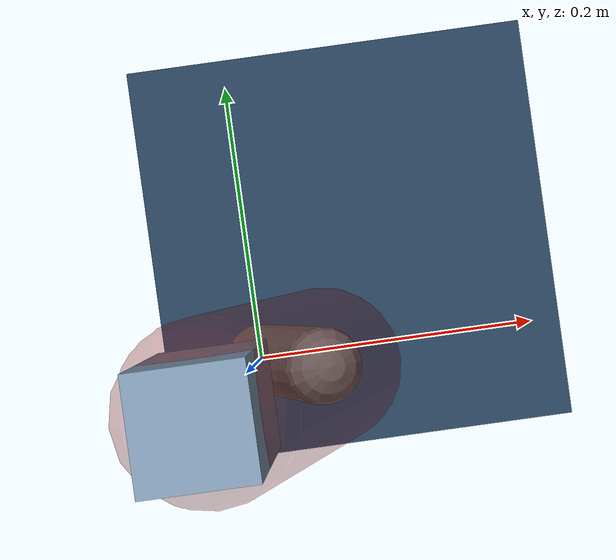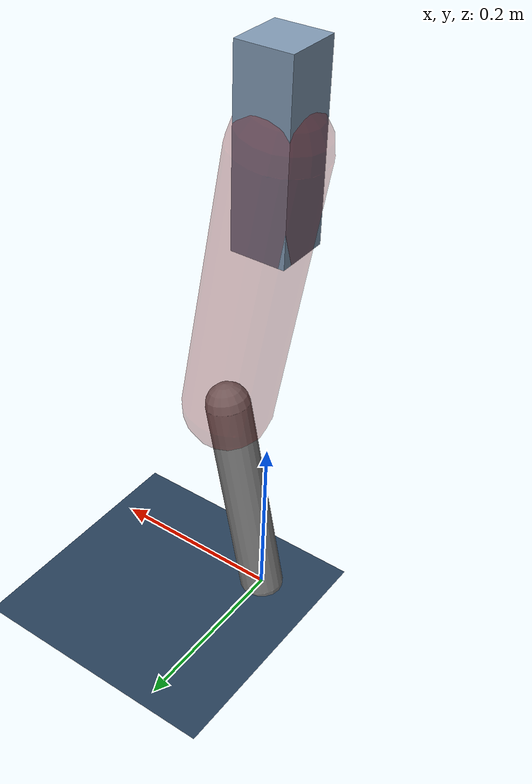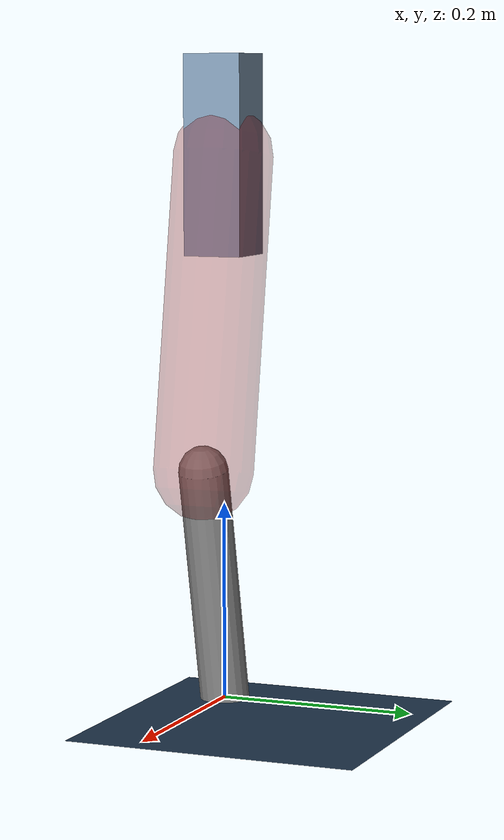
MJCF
<mujoco model="Hopper2D">
	<compiler inertiafromgeom="true" angle="radian" />
	<option timestep="0.001" integrator="implicit" cone="elliptic" solver="Newton" tolerance="1e-10" />

	<default>
		<geom contype="1" conaffinity="1" condim="3" friction="2 0.005 0.0001" solref="0.005 1" />
		<joint limited="true" damping="0.1" />
	</default>

	<asset>
		<texture name="skybox" type="skybox" builtin="gradient" rgb1=".4 .6 .8" rgb2="0 0 0" width="800" height="800" />
		<texture name="grid" type="2d" builtin="checker" rgb1=".1 .2 .3" rgb2=".2 .3 .4" width="300" height="300" mark="edge" markrgb=".2 .3 .4" />
		<material name="ground" texture="grid" texrepeat="1 1" texuniform="true" reflectance="0.1" />
		<material name="leg" rgba="0.5 0.6 0.7 1" />
	</asset>

	<worldbody>

		<geom name="floor" type="plane" size="5 5 0.25" material="ground" />

		<light directional="false" diffuse="0.8 0.8 0.8" specular="0.3 0.3 0.3" pos="0 0 2" dir="0 0 -1" />
		<light mode="targetbodycom" target="base" directional="false" diffuse="0.8 0.8 0.8" specular="0.3 0.3 0.3" pos="0 0 2" dir="0 0 -1" />

		<camera name="fixed" pos="0 -2 1" xyaxes="1 0 0 0 0 1" />
		<camera name="tracking" mode="trackcom" pos="0 -3 1" />

		<body name="root" pos="0 0 0.5512795364991434">
			<joint name="slide_x" type="slide" axis="1 0 0" range="-100 100" />
			<joint name="slide_z" type="slide" axis="0 0 1" range="0 10" />

			<body name="base" pos="0 0 0">
				<geom name="torso" type="box" size="0.03 0.03 0.1" mass="1.635" material="leg" />

				<body name="link1" pos="0 0 0" euler="0 1.4041606347698399 0">
					<joint type="hinge" axis="0 -1 0" pos="0 0 0" name="hinge1" limited="true" range="-3.14 3.14" stiffness="0" damping="0.1" />
					<geom name="thigh" type="capsule" fromto="0 0 0 0.3154205830989003 0 0" size="0.05" rgba="0.5 0 0 0.3" mass="1.030677632676921" />

					<body name="link2" pos="0.3154205830989003 0 0" euler="0 0.3810697148258825 0">
						<joint type="hinge" axis="0 -1 0" pos="0 0 0" name="hinge2" limited="true" range="-3.14 3.14" stiffness="0" damping="0.1" />
						<geom name="shank" type="capsule" fromto="0 0 0 0.24585895340024316 0 0" size="0.025" mass="0.4390871627201945" />

					</body>
				</body>
			</body>
		</body>
	</worldbody>

	<actuator>
		<motor name="torque1" joint="hinge1" ctrlrange="-23.427637519469187 23.427637519469187" ctrllimited="true" gear="1" />
		<motor name="torque2" joint="hinge2" ctrlrange="-71.64315843230807 71.64315843230807" ctrllimited="true" gear="1" />
	</actuator>
</mujoco>
